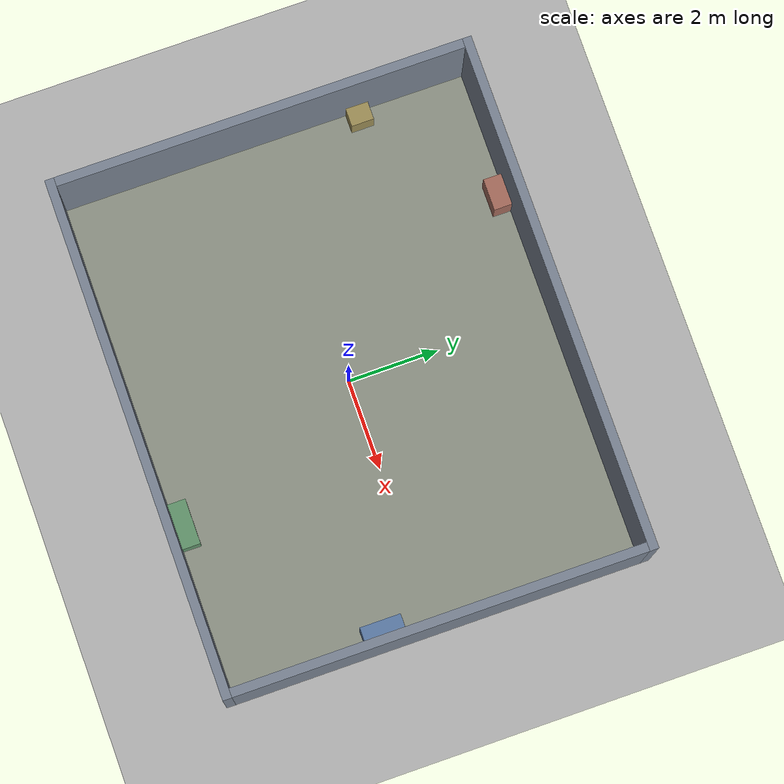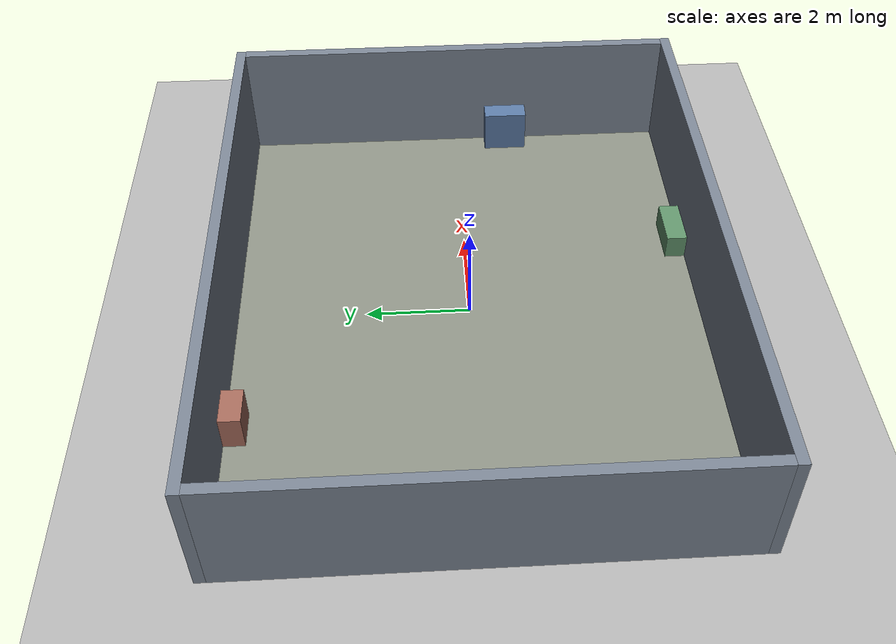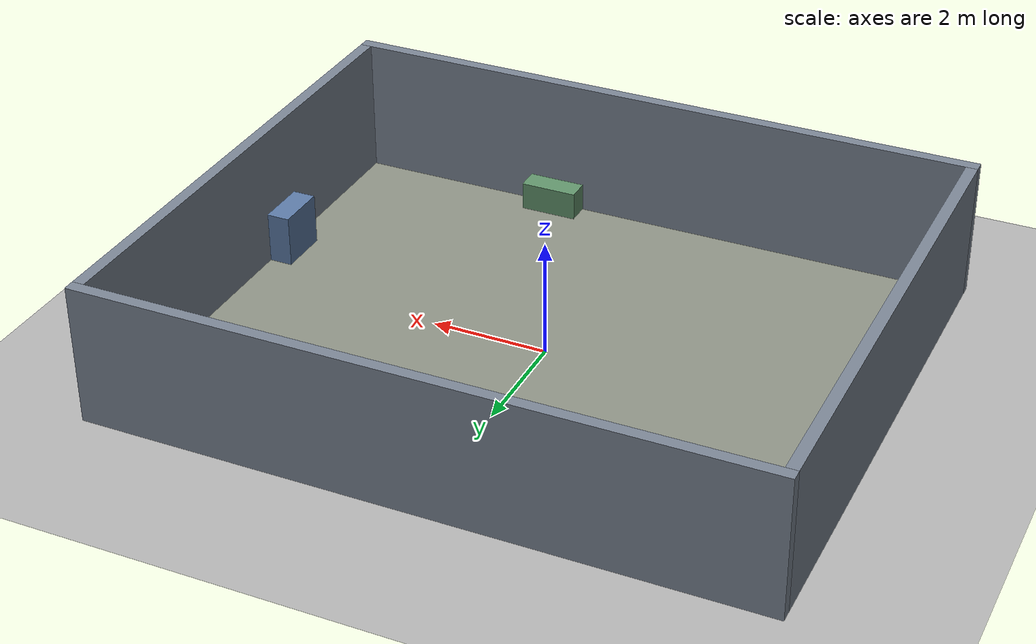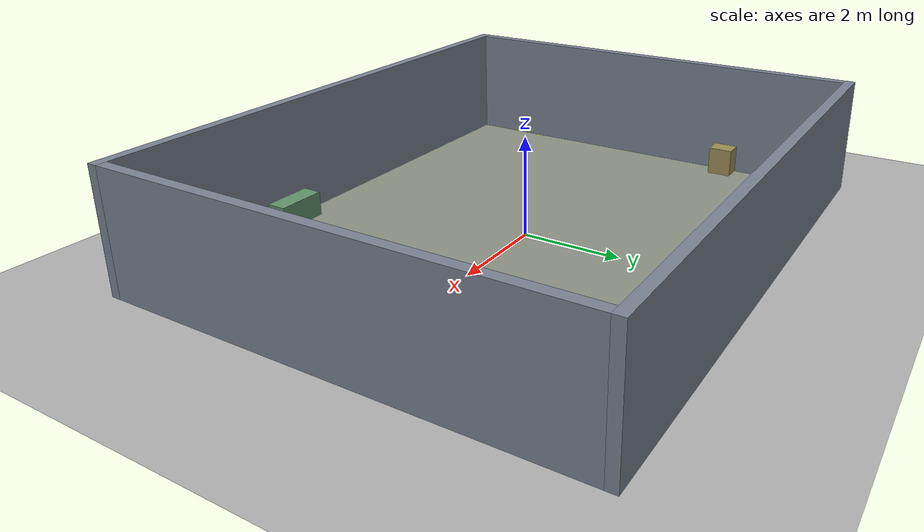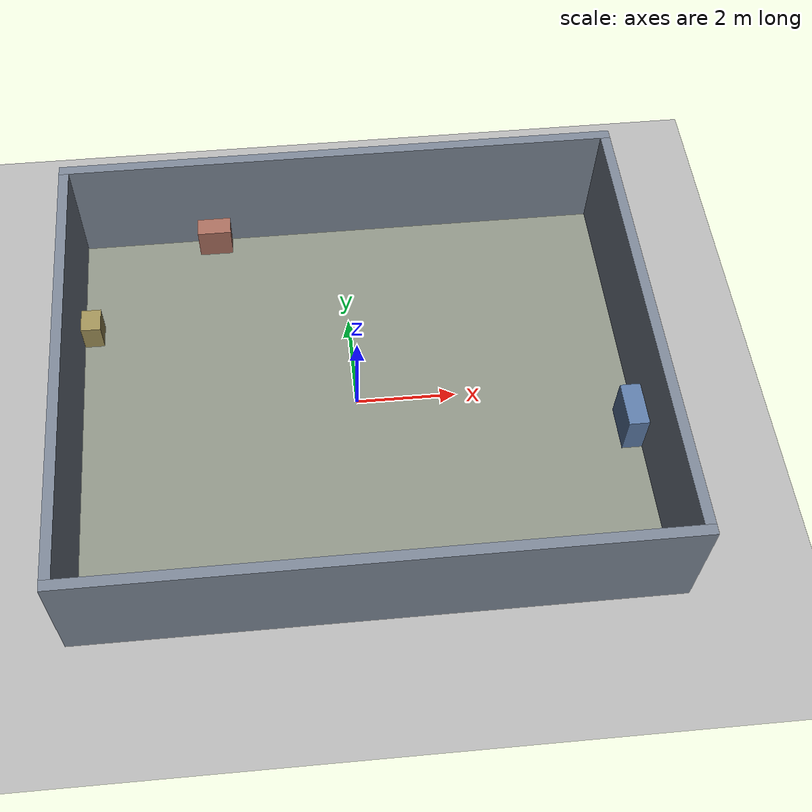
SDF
<?xml version="1.0" ?>
<sdf version='1.8'>
  <world name='coverage_100'>

    <physics name='4ms' type='ignored'>
      <max_step_size>0.004</max_step_size>
      <real_time_factor>1</real_time_factor>
    </physics>

    <plugin filename="ignition-gazebo-physics-system"
            name="ignition::gazebo::systems::Physics"/>
    <plugin filename="ignition-gazebo-user-commands-system"
            name="ignition::gazebo::systems::UserCommands"/>
    <plugin filename="ignition-gazebo-scene-broadcaster-system"
            name="ignition::gazebo::systems::SceneBroadcaster"/>
    <plugin filename="ignition-gazebo-sensors-system"
            name="ignition::gazebo::systems::Sensors">
      <render_engine>ogre2</render_engine>
    </plugin>
    <plugin filename="ignition-gazebo-contact-system"
            name="ignition::gazebo::systems::Contact"/>
    <plugin filename="ignition-gazebo-imu-system"
            name="ignition::gazebo::systems::Imu"/>

    <light name='sun' type='directional'>
      <pose>0 0 10 0 0 0</pose>
      <cast_shadows>true</cast_shadows>
      <intensity>1.0</intensity>
      <direction>-0.45 0.15 -0.88</direction>
      <diffuse>0.9 0.9 0.85 1</diffuse>
      <specular>0.15 0.15 0.15 1</specular>
    </light>

    <light name='ceiling' type='point'>
      <pose>0 0 3.0 0 0 0</pose>
      <diffuse>0.9 0.9 0.86 1</diffuse>
      <specular>0.1 0.1 0.1 1</specular>
      <attenuation>
        <range>12</range>
        <linear>0.08</linear>
      </attenuation>
    </light>

    <model name='ground_plane'>
      <static>true</static>
      <link name='link'>
        <collision name='collision'>
          <geometry>
            <plane>
              <normal>0 0 1</normal>
              <size>100 100</size>
            </plane>
          </geometry>
        </collision>
        <visual name='visual'>
          <geometry>
            <plane>
              <normal>0 0 1</normal>
              <size>100 100</size>
            </plane>
          </geometry>
          <material>
            <ambient>0.70 0.70 0.70 1</ambient>
            <diffuse>0.70 0.70 0.70 1</diffuse>
          </material>
        </visual>
      </link>
    </model>

    <model name='floor'>
      <static>true</static>
      <pose>0 0 0.003 0 0 0</pose>
      <link name='link'>
        <collision name='collision'>
          <geometry><box><size>11.0 9.0 0.004</size></box></geometry>
        </collision>
        <visual name='visual'>
          <geometry><box><size>11.0 9.0 0.004</size></box></geometry>
          <material>
            <ambient>0.55 0.57 0.52 1</ambient>
            <diffuse>0.55 0.57 0.52 1</diffuse>
          </material>
        </visual>
      </link>
    </model>

    <!-- Interior bounds are x=[-5.5,5.5], y=[-4.5,4.5]. -->
    <model name='wall_north'><static>true</static><pose>0 4.6 1.2 0 0 0</pose><link name='link'>
      <collision name='collision'><geometry><box><size>11.4 0.2 2.4</size></box></geometry></collision>
      <visual name='visual'><geometry><box><size>11.4 0.2 2.4</size></box></geometry>
        <material><ambient>0.48 0.52 0.58 1</ambient><diffuse>0.48 0.52 0.58 1</diffuse></material></visual>
    </link></model>

    <model name='wall_south'><static>true</static><pose>0 -4.6 1.2 0 0 0</pose><link name='link'>
      <collision name='collision'><geometry><box><size>11.4 0.2 2.4</size></box></geometry></collision>
      <visual name='visual'><geometry><box><size>11.4 0.2 2.4</size></box></geometry>
        <material><ambient>0.48 0.52 0.58 1</ambient><diffuse>0.48 0.52 0.58 1</diffuse></material></visual>
    </link></model>

    <model name='wall_east'><static>true</static><pose>5.6 0 1.2 0 0 0</pose><link name='link'>
      <collision name='collision'><geometry><box><size>0.2 9.0 2.4</size></box></geometry></collision>
      <visual name='visual'><geometry><box><size>0.2 9.0 2.4</size></box></geometry>
        <material><ambient>0.48 0.52 0.58 1</ambient><diffuse>0.48 0.52 0.58 1</diffuse></material></visual>
    </link></model>

    <model name='wall_west'><static>true</static><pose>-5.6 0 1.2 0 0 0</pose><link name='link'>
      <collision name='collision'><geometry><box><size>0.2 9.0 2.4</size></box></geometry></collision>
      <visual name='visual'><geometry><box><size>0.2 9.0 2.4</size></box></geometry>
        <material><ambient>0.48 0.52 0.58 1</ambient><diffuse>0.48 0.52 0.58 1</diffuse></material></visual>
    </link></model>

    <model name='landmark_north_tab'><static>true</static><pose>-2.7 4.3 0.35 0 0 0</pose><link name='link'>
      <collision name='collision'><geometry><box><size>0.7 0.4 0.7</size></box></geometry></collision>
      <visual name='visual'><geometry><box><size>0.7 0.4 0.7</size></box></geometry>
        <material><ambient>0.65 0.42 0.36 1</ambient><diffuse>0.65 0.42 0.36 1</diffuse></material></visual>
    </link></model>

    <model name='landmark_south_tab'><static>true</static><pose>1.8 -4.3 0.25 0 0 0</pose><link name='link'>
      <collision name='collision'><geometry><box><size>1.0 0.4 0.5</size></box></geometry></collision>
      <visual name='visual'><geometry><box><size>1.0 0.4 0.5</size></box></geometry>
        <material><ambient>0.38 0.58 0.42 1</ambient><diffuse>0.38 0.58 0.42 1</diffuse></material></visual>
    </link></model>

    <model name='landmark_east_tab'><static>true</static><pose>5.3 -1.1 0.45 0 0 0</pose><link name='link'>
      <collision name='collision'><geometry><box><size>0.4 0.9 0.9</size></box></geometry></collision>
      <visual name='visual'><geometry><box><size>0.4 0.9 0.9</size></box></geometry>
        <material><ambient>0.36 0.48 0.65 1</ambient><diffuse>0.36 0.48 0.65 1</diffuse></material></visual>
    </link></model>

    <model name='landmark_west_tab'><static>true</static><pose>-5.3 2.1 0.3 0 0 0</pose><link name='link'>
      <collision name='collision'><geometry><box><size>0.4 0.5 0.6</size></box></geometry></collision>
      <visual name='visual'><geometry><box><size>0.4 0.5 0.6</size></box></geometry>
        <material><ambient>0.62 0.56 0.34 1</ambient><diffuse>0.62 0.56 0.34 1</diffuse></material></visual>
    </link></model>

    <model name='world_monitor_cam'>
      <static>true</static>
      <pose>0 0 13.0 0 1.5708 0</pose>
      <link name='link'>
        <sensor name='monitor_camera' type='camera'>
          <always_on>true</always_on>
          <update_rate>10</update_rate>
          <topic>world_monitor/image_raw</topic>
          <camera>
            <horizontal_fov>1.25</horizontal_fov>
            <image><width>960</width><height>540</height><format>R8G8B8</format></image>
            <clip><near>0.05</near><far>20.0</far></clip>
          </camera>
        </sensor>
      </link>
    </model>

  </world>
</sdf>
